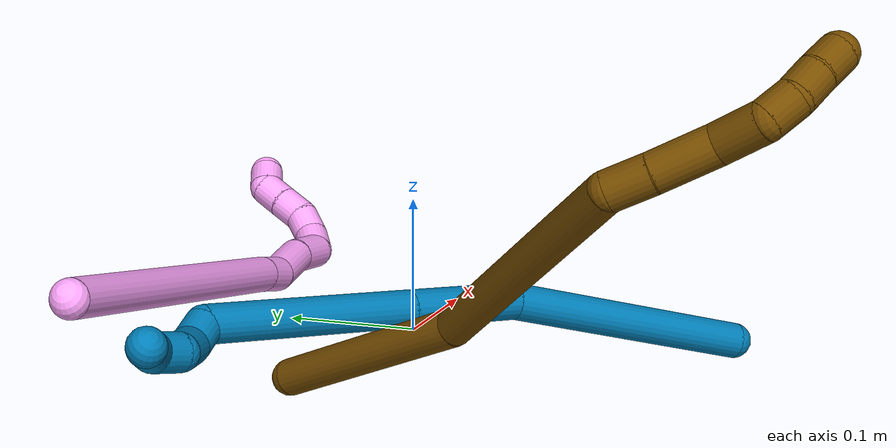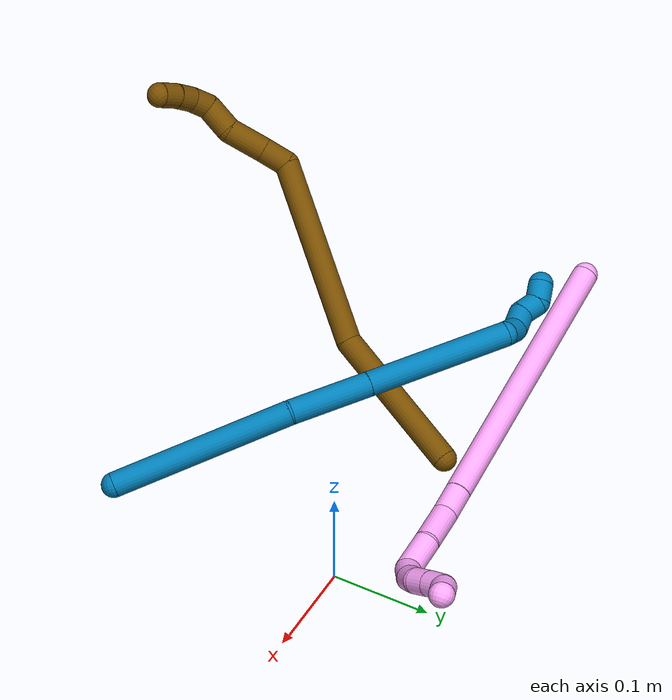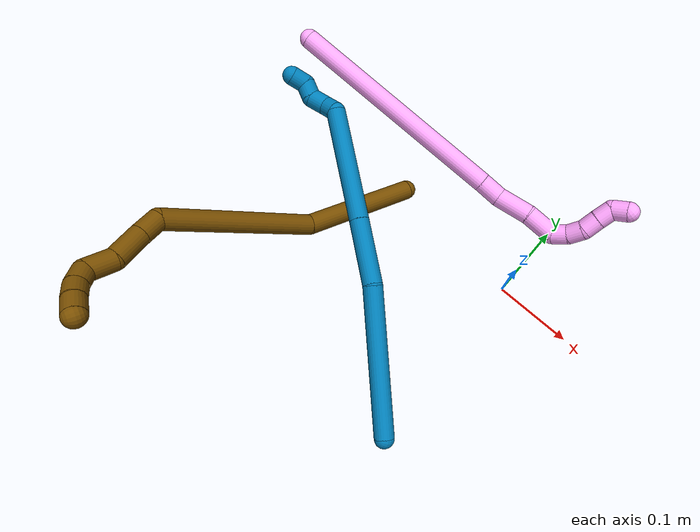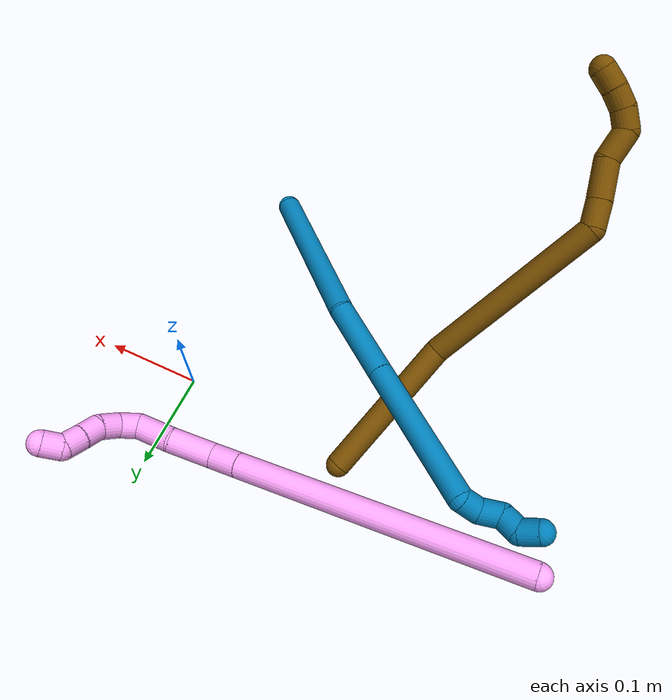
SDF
<sdf version="1.7">
 <world name="default">
  <model name="photoneo_s_sensor">
   <static>1</static>
   <pose>0 0 2 1.57079 1.57079 3.14159</pose>
   <link name="link">
    <inertial><mass>0.1</mass></inertial>
    <sensor name="sensor" type="depth">
     <update_rate>30</update_rate>
     <camera>
      <horizontal_fov>1.22</horizontal_fov>
      <image><width>1920</width><height>1200</height><format>B8G8R8</format></image>
      <clip><near>0.1</near><far>4</far></clip>
      <depth_camera><output>points</output></depth_camera>
     </camera>
     <plugin name="camera_plugin" filename="libgazebo_ros_depth_camera.so">
      <baseline>0.2</baseline>
      <alwaysOn>1</alwaysOn>
      <updateRate>0.0</updateRate>
      <cameraName>camera_ir</cameraName>
      <imageTopicName>/camera/color/image_raw</imageTopicName>
      <cameraInfoTopicName>/camera/color/camera_info</cameraInfoTopicName>
      <depthImageTopicName>/camera/depth/image_raw</depthImageTopicName>
      <depthImageCameraInfoTopicName>/camera/depth/camera_info</depthImageCameraInfoTopicName>
      <pointCloudTopicName>/camera/depth/points</pointCloudTopicName>
      <frameName>fr_optical</frameName>
      <pointCloudCutoff>0.1</pointCloudCutoff>
      <pointCloudCutoffMax>2.0</pointCloudCutoffMax>
      <distortionK1>0</distortionK1>
      <distortionK2>0</distortionK2>
      <distortionK3>0</distortionK3>
      <distortionT1>0</distortionT1>
      <distortionT2>0</distortionT2>
      <CxPrime>0</CxPrime>
      <Cx>0</Cx>
      <Cy>0</Cy>
      <focalLength>0</focalLength>
      <hackBaseline>0</hackBaseline>
     </plugin>
    </sensor>
   </link>
  </model>
  <model name="bin">
   <static>1</static>
   <link name="bottom">
    <collision name="collision-bottom">
     <pose>0 0 -0.01 0 -0 0</pose>
     <geometry><box><size>0.8 0.6 0.02</size></box></geometry>
     <surface>
      <friction><ode><mu>100</mu><mu2>100</mu2></ode></friction>
      <contact><collide_bitmask>65535</collide_bitmask></contact>
     </surface>
    </collision>
   </link>
   <link name="west_wall">
    <collision name="collision-west_wall">
     <pose>-0.41 0 0.1 0 -0 0</pose>
     <geometry><box><size>0.02 0.6 0.2</size></box></geometry>
     <surface>
      <friction><ode><mu>100</mu><mu2>100</mu2></ode></friction>
      <contact><collide_bitmask>65535</collide_bitmask></contact>
     </surface>
    </collision>
   </link>
   <link name="east_wall">
    <collision name="collision-east_wall">
     <pose>0.41 0 0.1 0 -0 0</pose>
     <geometry><box><size>0.02 0.6 0.2</size></box></geometry>
     <surface>
      <friction><ode><mu>100</mu><mu2>100</mu2></ode></friction>
      <contact><collide_bitmask>65535</collide_bitmask></contact>
     </surface>
    </collision>
   </link>
   <link name="south_wall">
    <collision name="collision-south_wall">
     <pose>0 -0.31 0.1 0 -0 0</pose>
     <geometry><box><size>0.8 0.02 0.2</size></box></geometry>
     <surface>
      <friction><ode><mu>100</mu><mu2>100</mu2></ode></friction>
      <contact><collide_bitmask>65535</collide_bitmask></contact>
     </surface>
    </collision>
   </link>
   <link name="north_wall">
    <collision name="collision-north_wall">
     <pose>0 0.31 0.1 0 -0 0</pose>
     <geometry><box><size>0.8 0.02 0.2</size></box></geometry>
     <surface>
      <friction><ode><mu>100</mu><mu2>100</mu2></ode></friction>
      <contact><collide_bitmask>65535</collide_bitmask></contact>
     </surface>
    </collision>
   </link>
  </model>
  <model name="4">
   <static>0</static>
   <link name="4">
    <collision name="collision-cylinder-e_1_1_4">
     <pose>0.062809 -0.024404 -0.127542 2.95253 0.450507 2.35695</pose>
     <geometry><cylinder><radius>0.0125</radius><length>0.288496</length></cylinder></geometry>
     <surface>
      <friction><ode><mu>1.16</mu><mu2>1.16</mu2><slip1>0</slip1><slip2>0</slip2></ode></friction>
      <contact><ode><kp>1e+06</kp><kd>1</kd><max_vel>0</max_vel><min_depth>0.001</min_depth></ode></contact>
     </surface>
    </collision>
    <visual name="visual-cylinder-e_1_1_4">
     <pose>0.062809 -0.024404 -0.127542 2.95253 0.450507 2.35695</pose>
     <geometry><cylinder><radius>0.0125</radius><length>0.288496</length></cylinder></geometry>
     <material><ambient>1 0.65098 0.996078 1</ambient></material>
    </visual>
    <collision name="collision-cylinder-e_2_4_5">
     <pose>0.131321 -0.051271 -0.268005 2.95329 0.409139 2.28734</pose>
     <geometry><cylinder><radius>0.0125</radius><length>0.028673</length></cylinder></geometry>
     <surface>
      <friction><ode><mu>1.16</mu><mu2>1.16</mu2><slip1>0</slip1><slip2>0</slip2></ode></friction>
      <contact><ode><kp>1e+06</kp><kd>1</kd><max_vel>0</max_vel><min_depth>0.001</min_depth></ode></contact>
     </surface>
    </collision>
    <visual name="visual-cylinder-e_2_4_5">
     <pose>0.131321 -0.051271 -0.268005 2.95329 0.409139 2.28734</pose>
     <geometry><cylinder><radius>0.0125</radius><length>0.028673</length></cylinder></geometry>
     <material><ambient>1 0.65098 0.996078 1</ambient></material>
    </visual>
    <collision name="collision-cylinder-e_3_5_6">
     <pose>0.151502 -0.057362 -0.297207 2.9223 0.714806 2.56826</pose>
     <geometry><cylinder><radius>0.0125</radius><length>0.044176</length></cylinder></geometry>
     <surface>
      <friction><ode><mu>1.16</mu><mu2>1.16</mu2><slip1>0</slip1><slip2>0</slip2></ode></friction>
      <contact><ode><kp>1e+06</kp><kd>1</kd><max_vel>0</max_vel><min_depth>0.001</min_depth></ode></contact>
     </surface>
    </collision>
    <visual name="visual-cylinder-e_3_5_6">
     <pose>0.151502 -0.057362 -0.297207 2.9223 0.714806 2.56826</pose>
     <geometry><cylinder><radius>0.0125</radius><length>0.044176</length></cylinder></geometry>
     <material><ambient>1 0.65098 0.996078 1</ambient></material>
    </visual>
    <collision name="collision-cylinder-e_4_6_7">
     <pose>0.174929 -0.06508 -0.329278 2.88814 0.501809 2.21896</pose>
     <geometry><cylinder><radius>0.0125</radius><length>0.037208</length></cylinder></geometry>
     <surface>
      <friction><ode><mu>1.16</mu><mu2>1.16</mu2><slip1>0</slip1><slip2>0</slip2></ode></friction>
      <contact><ode><kp>1e+06</kp><kd>1</kd><max_vel>0</max_vel><min_depth>0.001</min_depth></ode></contact>
     </surface>
    </collision>
    <visual name="visual-cylinder-e_4_6_7">
     <pose>0.174929 -0.06508 -0.329278 2.88814 0.501809 2.21896</pose>
     <geometry><cylinder><radius>0.0125</radius><length>0.037208</length></cylinder></geometry>
     <material><ambient>1 0.65098 0.996078 1</ambient></material>
    </visual>
    <collision name="collision-cylinder-e_5_7_8">
     <pose>0.19284 -0.067167 -0.349281 -2.69779 1.09083 -2.42966</pose>
     <geometry><cylinder><radius>0.0125</radius><length>0.020208</length></cylinder></geometry>
     <surface>
      <friction><ode><mu>1.16</mu><mu2>1.16</mu2><slip1>0</slip1><slip2>0</slip2></ode></friction>
      <contact><ode><kp>1e+06</kp><kd>1</kd><max_vel>0</max_vel><min_depth>0.001</min_depth></ode></contact>
     </surface>
    </collision>
    <visual name="visual-cylinder-e_5_7_8">
     <pose>0.19284 -0.067167 -0.349281 -2.69779 1.09083 -2.42966</pose>
     <geometry><cylinder><radius>0.0125</radius><length>0.020208</length></cylinder></geometry>
     <material><ambient>1 0.65098 0.996078 1</ambient></material>
    </visual>
    <collision name="collision-cylinder-e_6_8_9">
     <pose>0.211454 -0.061843 -0.354523 -1.87114 1.22511 -1.523</pose>
     <geometry><cylinder><radius>0.0125</radius><length>0.020517</length></cylinder></geometry>
     <surface>
      <friction><ode><mu>1.16</mu><mu2>1.16</mu2><slip1>0</slip1><slip2>0</slip2></ode></friction>
      <contact><ode><kp>1e+06</kp><kd>1</kd><max_vel>0</max_vel><min_depth>0.001</min_depth></ode></contact>
     </surface>
    </collision>
    <visual name="visual-cylinder-e_6_8_9">
     <pose>0.211454 -0.061843 -0.354523 -1.87114 1.22511 -1.523</pose>
     <geometry><cylinder><radius>0.0125</radius><length>0.020517</length></cylinder></geometry>
     <material><ambient>1 0.65098 0.996078 1</ambient></material>
    </visual>
    <collision name="collision-cylinder-e_7_9_10">
     <pose>0.228743 -0.051833 -0.355225 -1.52213 0.850918 -0.814901</pose>
     <geometry><cylinder><radius>0.0125</radius><length>0.020317</length></cylinder></geometry>
     <surface>
      <friction><ode><mu>1.16</mu><mu2>1.16</mu2><slip1>0</slip1><slip2>0</slip2></ode></friction>
      <contact><ode><kp>1e+06</kp><kd>1</kd><max_vel>0</max_vel><min_depth>0.001</min_depth></ode></contact>
     </surface>
    </collision>
    <visual name="visual-cylinder-e_7_9_10">
     <pose>0.228743 -0.051833 -0.355225 -1.52213 0.850918 -0.814901</pose>
     <geometry><cylinder><radius>0.0125</radius><length>0.020317</length></cylinder></geometry>
     <material><ambient>1 0.65098 0.996078 1</ambient></material>
    </visual>
    <collision name="collision-cylinder-e_8_10_11">
     <pose>0.244139 -0.038604 -0.355059 -1.59522 0.870228 -0.889046</pose>
     <geometry><cylinder><radius>0.0125</radius><length>0.020296</length></cylinder></geometry>
     <surface>
      <friction><ode><mu>1.16</mu><mu2>1.16</mu2><slip1>0</slip1><slip2>0</slip2></ode></friction>
      <contact><ode><kp>1e+06</kp><kd>1</kd><max_vel>0</max_vel><min_depth>0.001</min_depth></ode></contact>
     </surface>
    </collision>
    <visual name="visual-cylinder-e_8_10_11">
     <pose>0.244139 -0.038604 -0.355059 -1.59522 0.870228 -0.889046</pose>
     <geometry><cylinder><radius>0.0125</radius><length>0.020296</length></cylinder></geometry>
     <material><ambient>1 0.65098 0.996078 1</ambient></material>
    </visual>
    <collision name="collision-cylinder-e_9_11_2">
     <pose>0.261083 -0.031753 -0.359297 -3.06542 1.15193 -3.02437</pose>
     <geometry><cylinder><radius>0.0125</radius><length>0.020109</length></cylinder></geometry>
     <surface>
      <friction><ode><mu>1.16</mu><mu2>1.16</mu2><slip1>0</slip1><slip2>0</slip2></ode></friction>
      <contact><ode><kp>1e+06</kp><kd>1</kd><max_vel>0</max_vel><min_depth>0.001</min_depth></ode></contact>
     </surface>
    </collision>
    <visual name="visual-cylinder-e_9_11_2">
     <pose>0.261083 -0.031753 -0.359297 -3.06542 1.15193 -3.02437</pose>
     <geometry><cylinder><radius>0.0125</radius><length>0.020109</length></cylinder></geometry>
     <material><ambient>1 0.65098 0.996078 1</ambient></material>
    </visual>
    <collision name="collision-sphere-2">
     <pose>0.270268 -0.031441 -0.363374 0 -0 0</pose>
     <geometry><sphere><radius>0.0125</radius></sphere></geometry>
     <surface>
      <friction><ode><mu>1.16</mu><mu2>1.16</mu2><slip1>0</slip1><slip2>0</slip2></ode></friction>
      <contact><ode><kp>1e+06</kp><kd>1</kd><max_vel>0</max_vel><min_depth>0.001</min_depth></ode></contact>
     </surface>
    </collision>
    <visual name="visual-sphere-2">
     <pose>0.270268 -0.031441 -0.363374 0 -0 0</pose>
     <geometry><sphere><radius>0.0125</radius></sphere></geometry>
     <material><ambient>1 0.65098 0.996078 1</ambient></material>
    </visual>
    <collision name="collision-sphere-11">
     <pose>0.251897 -0.032064 -0.355219 0 -0 0</pose>
     <geometry><sphere><radius>0.0125</radius></sphere></geometry>
     <surface>
      <friction><ode><mu>1.16</mu><mu2>1.16</mu2><slip1>0</slip1><slip2>0</slip2></ode></friction>
      <contact><ode><kp>1e+06</kp><kd>1</kd><max_vel>0</max_vel><min_depth>0.001</min_depth></ode></contact>
     </surface>
    </collision>
    <visual name="visual-sphere-11">
     <pose>0.251897 -0.032064 -0.355219 0 -0 0</pose>
     <geometry><sphere><radius>0.0125</radius></sphere></geometry>
     <material><ambient>1 0.65098 0.996078 1</ambient></material>
    </visual>
    <collision name="collision-sphere-10">
     <pose>0.236381 -0.045144 -0.3549 0 -0 0</pose>
     <geometry><sphere><radius>0.0125</radius></sphere></geometry>
     <surface>
      <friction><ode><mu>1.16</mu><mu2>1.16</mu2><slip1>0</slip1><slip2>0</slip2></ode></friction>
      <contact><ode><kp>1e+06</kp><kd>1</kd><max_vel>0</max_vel><min_depth>0.001</min_depth></ode></contact>
     </surface>
    </collision>
    <visual name="visual-sphere-10">
     <pose>0.236381 -0.045144 -0.3549 0 -0 0</pose>
     <geometry><sphere><radius>0.0125</radius></sphere></geometry>
     <material><ambient>1 0.65098 0.996078 1</ambient></material>
    </visual>
    <collision name="collision-sphere-9">
     <pose>0.221105 -0.058523 -0.355551 0 -0 0</pose>
     <geometry><sphere><radius>0.0125</radius></sphere></geometry>
     <surface>
      <friction><ode><mu>1.16</mu><mu2>1.16</mu2><slip1>0</slip1><slip2>0</slip2></ode></friction>
      <contact><ode><kp>1e+06</kp><kd>1</kd><max_vel>0</max_vel><min_depth>0.001</min_depth></ode></contact>
     </surface>
    </collision>
    <visual name="visual-sphere-9">
     <pose>0.221105 -0.058523 -0.355551 0 -0 0</pose>
     <geometry><sphere><radius>0.0125</radius></sphere></geometry>
     <material><ambient>1 0.65098 0.996078 1</ambient></material>
    </visual>
    <collision name="collision-sphere-4">
     <pose>0.125617 -0.048809 -0.255084 0 -0 0</pose>
     <geometry><sphere><radius>0.0125</radius></sphere></geometry>
     <surface>
      <friction><ode><mu>1.16</mu><mu2>1.16</mu2><slip1>0</slip1><slip2>0</slip2></ode></friction>
      <contact><ode><kp>1e+06</kp><kd>1</kd><max_vel>0</max_vel><min_depth>0.001</min_depth></ode></contact>
     </surface>
    </collision>
    <visual name="visual-sphere-4">
     <pose>0.125617 -0.048809 -0.255084 0 -0 0</pose>
     <geometry><sphere><radius>0.0125</radius></sphere></geometry>
     <material><ambient>1 0.65098 0.996078 1</ambient></material>
    </visual>
    <collision name="collision-sphere-1">
     <geometry><sphere><radius>0.0125</radius></sphere></geometry>
     <surface>
      <friction><ode><mu>1.16</mu><mu2>1.16</mu2><slip1>0</slip1><slip2>0</slip2></ode></friction>
      <contact><ode><kp>1e+06</kp><kd>1</kd><max_vel>0</max_vel><min_depth>0.001</min_depth></ode></contact>
     </surface>
    </collision>
    <visual name="visual-sphere-1">
     <geometry><sphere><radius>0.0125</radius></sphere></geometry>
     <material><ambient>1 0.65098 0.996078 1</ambient></material>
    </visual>
    <collision name="collision-sphere-8">
     <pose>0.201802 -0.065164 -0.353494 0 -0 0</pose>
     <geometry><sphere><radius>0.0125</radius></sphere></geometry>
     <surface>
      <friction><ode><mu>1.16</mu><mu2>1.16</mu2><slip1>0</slip1><slip2>0</slip2></ode></friction>
      <contact><ode><kp>1e+06</kp><kd>1</kd><max_vel>0</max_vel><min_depth>0.001</min_depth></ode></contact>
     </surface>
    </collision>
    <visual name="visual-sphere-8">
     <pose>0.201802 -0.065164 -0.353494 0 -0 0</pose>
     <geometry><sphere><radius>0.0125</radius></sphere></geometry>
     <material><ambient>1 0.65098 0.996078 1</ambient></material>
    </visual>
    <collision name="collision-sphere-5">
     <pose>0.137024 -0.053733 -0.280925 0 -0 0</pose>
     <geometry><sphere><radius>0.0125</radius></sphere></geometry>
     <surface>
      <friction><ode><mu>1.16</mu><mu2>1.16</mu2><slip1>0</slip1><slip2>0</slip2></ode></friction>
      <contact><ode><kp>1e+06</kp><kd>1</kd><max_vel>0</max_vel><min_depth>0.001</min_depth></ode></contact>
     </surface>
    </collision>
    <visual name="visual-sphere-5">
     <pose>0.137024 -0.053733 -0.280925 0 -0 0</pose>
     <geometry><sphere><radius>0.0125</radius></sphere></geometry>
     <material><ambient>1 0.65098 0.996078 1</ambient></material>
    </visual>
    <collision name="collision-sphere-6">
     <pose>0.16598 -0.060991 -0.313489 0 -0 0</pose>
     <geometry><sphere><radius>0.0125</radius></sphere></geometry>
     <surface>
      <friction><ode><mu>1.16</mu><mu2>1.16</mu2><slip1>0</slip1><slip2>0</slip2></ode></friction>
      <contact><ode><kp>1e+06</kp><kd>1</kd><max_vel>0</max_vel><min_depth>0.001</min_depth></ode></contact>
     </surface>
    </collision>
    <visual name="visual-sphere-6">
     <pose>0.16598 -0.060991 -0.313489 0 -0 0</pose>
     <geometry><sphere><radius>0.0125</radius></sphere></geometry>
     <material><ambient>1 0.65098 0.996078 1</ambient></material>
    </visual>
    <collision name="collision-sphere-7">
     <pose>0.183878 -0.06917 -0.345068 0 -0 0</pose>
     <geometry><sphere><radius>0.0125</radius></sphere></geometry>
     <surface>
      <friction><ode><mu>1.16</mu><mu2>1.16</mu2><slip1>0</slip1><slip2>0</slip2></ode></friction>
      <contact><ode><kp>1e+06</kp><kd>1</kd><max_vel>0</max_vel><min_depth>0.001</min_depth></ode></contact>
     </surface>
    </collision>
    <visual name="visual-sphere-7">
     <pose>0.183878 -0.06917 -0.345068 0 -0 0</pose>
     <geometry><sphere><radius>0.0125</radius></sphere></geometry>
     <material><ambient>1 0.65098 0.996078 1</ambient></material>
    </visual>
    <inertial>
     <pose>0.11635 -0.037135 -0.211683 0 -0 0</pose>
     <mass>0.5</mass>
     <inertia><ixx>1.6e-05</ixx><ixy>0</ixy><ixz>0</ixz><iyy>0.00282</iyy><iyz>0</iyz><izz>-0.00058</izz></inertia>
    </inertial>
   </link>
   <pose>-0.387974 0.066382 0.110994 -0.328302 -0.865745 0.504871</pose>
  </model>
  <model name="9">
   <static>0</static>
   <link name="9">
    <collision name="collision-cylinder-e_1_1_4">
     <pose>-0.041654 0.081236 -0.013548 -1.73605 -0.468249 0.548923</pose>
     <geometry><cylinder><radius>0.0125</radius><length>0.184583</length></cylinder></geometry>
     <surface>
      <friction><ode><mu>1.16</mu><mu2>1.16</mu2><slip1>0</slip1><slip2>0</slip2></ode></friction>
      <contact><ode><kp>1e+06</kp><kd>1</kd><max_vel>0</max_vel><min_depth>0.001</min_depth></ode></contact>
     </surface>
    </collision>
    <visual name="visual-cylinder-e_1_1_4">
     <pose>-0.041654 0.081236 -0.013548 -1.73605 -0.468249 0.548923</pose>
     <geometry><cylinder><radius>0.0125</radius><length>0.184583</length></cylinder></geometry>
     <material><ambient>0 0.490196 0.709804 1</ambient></material>
    </visual>
    <collision name="collision-cylinder-e_2_4_5">
     <pose>-0.093407 0.202629 -0.031645 -1.6836 -0.244881 0.273843</pose>
     <geometry><cylinder><radius>0.0125</radius><length>0.083316</length></cylinder></geometry>
     <surface>
      <friction><ode><mu>1.16</mu><mu2>1.16</mu2><slip1>0</slip1><slip2>0</slip2></ode></friction>
      <contact><ode><kp>1e+06</kp><kd>1</kd><max_vel>0</max_vel><min_depth>0.001</min_depth></ode></contact>
     </surface>
    </collision>
    <visual name="visual-cylinder-e_2_4_5">
     <pose>-0.093407 0.202629 -0.031645 -1.6836 -0.244881 0.273843</pose>
     <geometry><cylinder><radius>0.0125</radius><length>0.083316</length></cylinder></geometry>
     <material><ambient>0 0.490196 0.709804 1</ambient></material>
    </visual>
    <collision name="collision-cylinder-e_3_5_6">
     <pose>-0.12121 0.314505 -0.044622 -1.68777 -0.240432 0.269997</pose>
     <geometry><cylinder><radius>0.0125</radius><length>0.148699</length></cylinder></geometry>
     <surface>
      <friction><ode><mu>1.16</mu><mu2>1.16</mu2><slip1>0</slip1><slip2>0</slip2></ode></friction>
      <contact><ode><kp>1e+06</kp><kd>1</kd><max_vel>0</max_vel><min_depth>0.001</min_depth></ode></contact>
     </surface>
    </collision>
    <visual name="visual-cylinder-e_3_5_6">
     <pose>-0.12121 0.314505 -0.044622 -1.68777 -0.240432 0.269997</pose>
     <geometry><cylinder><radius>0.0125</radius><length>0.148699</length></cylinder></geometry>
     <material><ambient>0 0.490196 0.709804 1</ambient></material>
    </visual>
    <collision name="collision-cylinder-e_4_6_7">
     <pose>-0.133728 0.394813 -0.054453 -1.73278 0.537349 -0.626611</pose>
     <geometry><cylinder><radius>0.0125</radius><length>0.020265</length></cylinder></geometry>
     <surface>
      <friction><ode><mu>1.16</mu><mu2>1.16</mu2><slip1>0</slip1><slip2>0</slip2></ode></friction>
      <contact><ode><kp>1e+06</kp><kd>1</kd><max_vel>0</max_vel><min_depth>0.001</min_depth></ode></contact>
     </surface>
    </collision>
    <visual name="visual-cylinder-e_4_6_7">
     <pose>-0.133728 0.394813 -0.054453 -1.73278 0.537349 -0.626611</pose>
     <geometry><cylinder><radius>0.0125</radius><length>0.020265</length></cylinder></geometry>
     <material><ambient>0 0.490196 0.709804 1</ambient></material>
    </visual>
    <collision name="collision-cylinder-e_5_7_8">
     <pose>-0.124946 0.411278 -0.06306 -2.31169 0.324973 -0.712497</pose>
     <geometry><cylinder><radius>0.0125</radius><length>0.022524</length></cylinder></geometry>
     <surface>
      <friction><ode><mu>1.16</mu><mu2>1.16</mu2><slip1>0</slip1><slip2>0</slip2></ode></friction>
      <contact><ode><kp>1e+06</kp><kd>1</kd><max_vel>0</max_vel><min_depth>0.001</min_depth></ode></contact>
     </surface>
    </collision>
    <visual name="visual-cylinder-e_5_7_8">
     <pose>-0.124946 0.411278 -0.06306 -2.31169 0.324973 -0.712497</pose>
     <geometry><cylinder><radius>0.0125</radius><length>0.022524</length></cylinder></geometry>
     <material><ambient>0 0.490196 0.709804 1</ambient></material>
    </visual>
    <collision name="collision-cylinder-e_6_8_9">
     <pose>-0.123081 0.428603 -0.073533 -1.90384 -0.171405 0.240095</pose>
     <geometry><cylinder><radius>0.0125</radius><length>0.020296</length></cylinder></geometry>
     <surface>
      <friction><ode><mu>1.16</mu><mu2>1.16</mu2><slip1>0</slip1><slip2>0</slip2></ode></friction>
      <contact><ode><kp>1e+06</kp><kd>1</kd><max_vel>0</max_vel><min_depth>0.001</min_depth></ode></contact>
     </surface>
    </collision>
    <visual name="visual-cylinder-e_6_8_9">
     <pose>-0.123081 0.428603 -0.073533 -1.90384 -0.171405 0.240095</pose>
     <geometry><cylinder><radius>0.0125</radius><length>0.020296</length></cylinder></geometry>
     <material><ambient>0 0.490196 0.709804 1</ambient></material>
    </visual>
    <collision name="collision-cylinder-e_7_9_2">
     <pose>-0.123637 0.44321 -0.085475 -2.6052 0.115941 -0.416245</pose>
     <geometry><cylinder><radius>0.0125</radius><length>0.020316</length></cylinder></geometry>
     <surface>
      <friction><ode><mu>1.16</mu><mu2>1.16</mu2><slip1>0</slip1><slip2>0</slip2></ode></friction>
      <contact><ode><kp>1e+06</kp><kd>1</kd><max_vel>0</max_vel><min_depth>0.001</min_depth></ode></contact>
     </surface>
    </collision>
    <visual name="visual-cylinder-e_7_9_2">
     <pose>-0.123637 0.44321 -0.085475 -2.6052 0.115941 -0.416245</pose>
     <geometry><cylinder><radius>0.0125</radius><length>0.020316</length></cylinder></geometry>
     <material><ambient>0 0.490196 0.709804 1</ambient></material>
    </visual>
    <collision name="collision-sphere-2">
     <pose>-0.122462 0.448366 -0.094148 0 -0 0</pose>
     <geometry><sphere><radius>0.0125</radius></sphere></geometry>
     <surface>
      <friction><ode><mu>1.16</mu><mu2>1.16</mu2><slip1>0</slip1><slip2>0</slip2></ode></friction>
      <contact><ode><kp>1e+06</kp><kd>1</kd><max_vel>0</max_vel><min_depth>0.001</min_depth></ode></contact>
     </surface>
    </collision>
    <visual name="visual-sphere-2">
     <pose>-0.122462 0.448366 -0.094148 0 -0 0</pose>
     <geometry><sphere><radius>0.0125</radius></sphere></geometry>
     <material><ambient>0 0.490196 0.709804 1</ambient></material>
    </visual>
    <collision name="collision-sphere-9">
     <pose>-0.124812 0.438053 -0.076802 0 -0 0</pose>
     <geometry><sphere><radius>0.0125</radius></sphere></geometry>
     <surface>
      <friction><ode><mu>1.16</mu><mu2>1.16</mu2><slip1>0</slip1><slip2>0</slip2></ode></friction>
      <contact><ode><kp>1e+06</kp><kd>1</kd><max_vel>0</max_vel><min_depth>0.001</min_depth></ode></contact>
     </surface>
    </collision>
    <visual name="visual-sphere-9">
     <pose>-0.124812 0.438053 -0.076802 0 -0 0</pose>
     <geometry><sphere><radius>0.0125</radius></sphere></geometry>
     <material><ambient>0 0.490196 0.709804 1</ambient></material>
    </visual>
    <collision name="collision-sphere-4">
     <pose>-0.083307 0.162471 -0.027096 0 -0 0</pose>
     <geometry><sphere><radius>0.0125</radius></sphere></geometry>
     <surface>
      <friction><ode><mu>1.16</mu><mu2>1.16</mu2><slip1>0</slip1><slip2>0</slip2></ode></friction>
      <contact><ode><kp>1e+06</kp><kd>1</kd><max_vel>0</max_vel><min_depth>0.001</min_depth></ode></contact>
     </surface>
    </collision>
    <visual name="visual-sphere-4">
     <pose>-0.083307 0.162471 -0.027096 0 -0 0</pose>
     <geometry><sphere><radius>0.0125</radius></sphere></geometry>
     <material><ambient>0 0.490196 0.709804 1</ambient></material>
    </visual>
    <collision name="collision-sphere-1">
     <geometry><sphere><radius>0.0125</radius></sphere></geometry>
     <surface>
      <friction><ode><mu>1.16</mu><mu2>1.16</mu2><slip1>0</slip1><slip2>0</slip2></ode></friction>
      <contact><ode><kp>1e+06</kp><kd>1</kd><max_vel>0</max_vel><min_depth>0.001</min_depth></ode></contact>
     </surface>
    </collision>
    <visual name="visual-sphere-1">
     <geometry><sphere><radius>0.0125</radius></sphere></geometry>
     <material><ambient>0 0.490196 0.709804 1</ambient></material>
    </visual>
    <collision name="collision-sphere-8">
     <pose>-0.12135 0.419153 -0.070264 0 -0 0</pose>
     <geometry><sphere><radius>0.0125</radius></sphere></geometry>
     <surface>
      <friction><ode><mu>1.16</mu><mu2>1.16</mu2><slip1>0</slip1><slip2>0</slip2></ode></friction>
      <contact><ode><kp>1e+06</kp><kd>1</kd><max_vel>0</max_vel><min_depth>0.001</min_depth></ode></contact>
     </surface>
    </collision>
    <visual name="visual-sphere-8">
     <pose>-0.12135 0.419153 -0.070264 0 -0 0</pose>
     <geometry><sphere><radius>0.0125</radius></sphere></geometry>
     <material><ambient>0 0.490196 0.709804 1</ambient></material>
    </visual>
    <collision name="collision-sphere-5">
     <pose>-0.103506 0.242787 -0.036194 0 -0 0</pose>
     <geometry><sphere><radius>0.0125</radius></sphere></geometry>
     <surface>
      <friction><ode><mu>1.16</mu><mu2>1.16</mu2><slip1>0</slip1><slip2>0</slip2></ode></friction>
      <contact><ode><kp>1e+06</kp><kd>1</kd><max_vel>0</max_vel><min_depth>0.001</min_depth></ode></contact>
     </surface>
    </collision>
    <visual name="visual-sphere-5">
     <pose>-0.103506 0.242787 -0.036194 0 -0 0</pose>
     <geometry><sphere><radius>0.0125</radius></sphere></geometry>
     <material><ambient>0 0.490196 0.709804 1</ambient></material>
    </visual>
    <collision name="collision-sphere-6">
     <pose>-0.138915 0.386222 -0.053049 0 -0 0</pose>
     <geometry><sphere><radius>0.0125</radius></sphere></geometry>
     <surface>
      <friction><ode><mu>1.16</mu><mu2>1.16</mu2><slip1>0</slip1><slip2>0</slip2></ode></friction>
      <contact><ode><kp>1e+06</kp><kd>1</kd><max_vel>0</max_vel><min_depth>0.001</min_depth></ode></contact>
     </surface>
    </collision>
    <visual name="visual-sphere-6">
     <pose>-0.138915 0.386222 -0.053049 0 -0 0</pose>
     <geometry><sphere><radius>0.0125</radius></sphere></geometry>
     <material><ambient>0 0.490196 0.709804 1</ambient></material>
    </visual>
    <collision name="collision-sphere-7">
     <pose>-0.128542 0.403403 -0.055857 0 -0 0</pose>
     <geometry><sphere><radius>0.0125</radius></sphere></geometry>
     <surface>
      <friction><ode><mu>1.16</mu><mu2>1.16</mu2><slip1>0</slip1><slip2>0</slip2></ode></friction>
      <contact><ode><kp>1e+06</kp><kd>1</kd><max_vel>0</max_vel><min_depth>0.001</min_depth></ode></contact>
     </surface>
    </collision>
    <visual name="visual-sphere-7">
     <pose>-0.128542 0.403403 -0.055857 0 -0 0</pose>
     <geometry><sphere><radius>0.0125</radius></sphere></geometry>
     <material><ambient>0 0.490196 0.709804 1</ambient></material>
    </visual>
    <inertial>
     <pose>-0.088058 0.227223 -0.035051 0 -0 0</pose>
     <mass>0.5</mass>
     <inertia>
      <ixx>0.001041</ixx>
      <ixy>0</ixy>
      <ixz>0</ixz>
      <iyy>0.000397</iyy>
      <iyz>0</iyz>
      <izz>-0.000482</izz>
     </inertia>
    </inertial>
   </link>
   <pose>0.006172 -0.241692 0.012541 -2.89003 0.783921 -1.95005</pose>
  </model>
  <model name="12">
   <static>0</static>
   <link name="12">
    <collision name="collision-cylinder-e_1_1_4">
     <pose>0.000321 -0.003377 0.075954 0.044437 0.004218 9.4e-05</pose>
     <geometry><cylinder><radius>0.0125</radius><length>0.152059</length></cylinder></geometry>
     <surface>
      <friction><ode><mu>1.16</mu><mu2>1.16</mu2><slip1>0</slip1><slip2>0</slip2></ode></friction>
      <contact><ode><kp>1e+06</kp><kd>1</kd><max_vel>0</max_vel><min_depth>0.001</min_depth></ode></contact>
     </surface>
    </collision>
    <visual name="visual-cylinder-e_1_1_4">
     <pose>0.000321 -0.003377 0.075954 0.044437 0.004218 9.4e-05</pose>
     <geometry><cylinder><radius>0.0125</radius><length>0.152059</length></cylinder></geometry>
     <material><ambient>0.466667 0.301961 0 1</ambient></material>
    </visual>
    <collision name="collision-cylinder-e_2_4_5">
     <pose>0.032549 -0.000821 0.240409 -0.066948 0.345309 -0.011679</pose>
     <geometry><cylinder><radius>0.0125</radius><length>0.188529</length></cylinder></geometry>
     <surface>
      <friction><ode><mu>1.16</mu><mu2>1.16</mu2><slip1>0</slip1><slip2>0</slip2></ode></friction>
      <contact><ode><kp>1e+06</kp><kd>1</kd><max_vel>0</max_vel><min_depth>0.001</min_depth></ode></contact>
     </surface>
    </collision>
    <visual name="visual-cylinder-e_2_4_5">
     <pose>0.032549 -0.000821 0.240409 -0.066948 0.345309 -0.011679</pose>
     <geometry><cylinder><radius>0.0125</radius><length>0.188529</length></cylinder></geometry>
     <material><ambient>0.466667 0.301961 0 1</ambient></material>
    </visual>
    <collision name="collision-cylinder-e_3_5_6">
     <pose>0.062647 -0.001133 0.340849 0.482024 -0.133498 -0.032858</pose>
     <geometry><cylinder><radius>0.0125</radius><length>0.027189</length></cylinder></geometry>
     <surface>
      <friction><ode><mu>1.16</mu><mu2>1.16</mu2><slip1>0</slip1><slip2>0</slip2></ode></friction>
      <contact><ode><kp>1e+06</kp><kd>1</kd><max_vel>0</max_vel><min_depth>0.001</min_depth></ode></contact>
     </surface>
    </collision>
    <visual name="visual-cylinder-e_3_5_6">
     <pose>0.062647 -0.001133 0.340849 0.482024 -0.133498 -0.032858</pose>
     <geometry><cylinder><radius>0.0125</radius><length>0.027189</length></cylinder></geometry>
     <material><ambient>0.466667 0.301961 0 1</ambient></material>
    </visual>
    <collision name="collision-cylinder-e_4_6_7">
     <pose>0.05842 -0.017533 0.369324 0.550669 -0.123946 -0.035057</pose>
     <geometry><cylinder><radius>0.0125</radius><length>0.039111</length></cylinder></geometry>
     <surface>
      <friction><ode><mu>1.16</mu><mu2>1.16</mu2><slip1>0</slip1><slip2>0</slip2></ode></friction>
      <contact><ode><kp>1e+06</kp><kd>1</kd><max_vel>0</max_vel><min_depth>0.001</min_depth></ode></contact>
     </surface>
    </collision>
    <visual name="visual-cylinder-e_4_6_7">
     <pose>0.05842 -0.017533 0.369324 0.550669 -0.123946 -0.035057</pose>
     <geometry><cylinder><radius>0.0125</radius><length>0.039111</length></cylinder></geometry>
     <material><ambient>0.466667 0.301961 0 1</ambient></material>
    </visual>
    <collision name="collision-cylinder-e_5_7_8">
     <pose>0.056963 -0.030541 0.401205 0.183891 0.061513 0.005674</pose>
     <geometry><cylinder><radius>0.0125</radius><length>0.031274</length></cylinder></geometry>
     <surface>
      <friction><ode><mu>1.16</mu><mu2>1.16</mu2><slip1>0</slip1><slip2>0</slip2></ode></friction>
      <contact><ode><kp>1e+06</kp><kd>1</kd><max_vel>0</max_vel><min_depth>0.001</min_depth></ode></contact>
     </surface>
    </collision>
    <visual name="visual-cylinder-e_5_7_8">
     <pose>0.056963 -0.030541 0.401205 0.183891 0.061513 0.005674</pose>
     <geometry><cylinder><radius>0.0125</radius><length>0.031274</length></cylinder></geometry>
     <material><ambient>0.466667 0.301961 0 1</ambient></material>
    </visual>
    <collision name="collision-cylinder-e_6_8_9">
     <pose>0.057903 -0.041845 0.422626 0.947355 -0.002034 -0.001042</pose>
     <geometry><cylinder><radius>0.0125</radius><length>0.020817</length></cylinder></geometry>
     <surface>
      <friction><ode><mu>1.16</mu><mu2>1.16</mu2><slip1>0</slip1><slip2>0</slip2></ode></friction>
      <contact><ode><kp>1e+06</kp><kd>1</kd><max_vel>0</max_vel><min_depth>0.001</min_depth></ode></contact>
     </surface>
    </collision>
    <visual name="visual-cylinder-e_6_8_9">
     <pose>0.057903 -0.041845 0.422626 0.947355 -0.002034 -0.001042</pose>
     <geometry><cylinder><radius>0.0125</radius><length>0.020817</length></cylinder></geometry>
     <material><ambient>0.466667 0.301961 0 1</ambient></material>
    </visual>
    <collision name="collision-cylinder-e_7_9_10">
     <pose>0.058121 -0.059753 0.431983 1.23698 0.023821 0.016952</pose>
     <geometry><cylinder><radius>0.0125</radius><length>0.020027</length></cylinder></geometry>
     <surface>
      <friction><ode><mu>1.16</mu><mu2>1.16</mu2><slip1>0</slip1><slip2>0</slip2></ode></friction>
      <contact><ode><kp>1e+06</kp><kd>1</kd><max_vel>0</max_vel><min_depth>0.001</min_depth></ode></contact>
     </surface>
    </collision>
    <visual name="visual-cylinder-e_7_9_10">
     <pose>0.058121 -0.059753 0.431983 1.23698 0.023821 0.016952</pose>
     <geometry><cylinder><radius>0.0125</radius><length>0.020027</length></cylinder></geometry>
     <material><ambient>0.466667 0.301961 0 1</ambient></material>
    </visual>
    <collision name="collision-cylinder-e_8_10_2">
     <pose>0.057623 -0.079378 0.437769 1.3291 -0.070168 -0.05498</pose>
     <geometry><cylinder><radius>0.0125</radius><length>0.020994</length></cylinder></geometry>
     <surface>
      <friction><ode><mu>1.16</mu><mu2>1.16</mu2><slip1>0</slip1><slip2>0</slip2></ode></friction>
      <contact><ode><kp>1e+06</kp><kd>1</kd><max_vel>0</max_vel><min_depth>0.001</min_depth></ode></contact>
     </surface>
    </collision>
    <visual name="visual-cylinder-e_8_10_2">
     <pose>0.057623 -0.079378 0.437769 1.3291 -0.070168 -0.05498</pose>
     <geometry><cylinder><radius>0.0125</radius><length>0.020994</length></cylinder></geometry>
     <material><ambient>0.466667 0.301961 0 1</ambient></material>
    </visual>
    <collision name="collision-sphere-2">
     <pose>0.056887 -0.089545 0.440275 0 -0 0</pose>
     <geometry><sphere><radius>0.0125</radius></sphere></geometry>
     <surface>
      <friction><ode><mu>1.16</mu><mu2>1.16</mu2><slip1>0</slip1><slip2>0</slip2></ode></friction>
      <contact><ode><kp>1e+06</kp><kd>1</kd><max_vel>0</max_vel><min_depth>0.001</min_depth></ode></contact>
     </surface>
    </collision>
    <visual name="visual-sphere-2">
     <pose>0.056887 -0.089545 0.440275 0 -0 0</pose>
     <geometry><sphere><radius>0.0125</radius></sphere></geometry>
     <material><ambient>0.466667 0.301961 0 1</ambient></material>
    </visual>
    <collision name="collision-sphere-10">
     <pose>0.058359 -0.069211 0.435263 0 -0 0</pose>
     <geometry><sphere><radius>0.0125</radius></sphere></geometry>
     <surface>
      <friction><ode><mu>1.16</mu><mu2>1.16</mu2><slip1>0</slip1><slip2>0</slip2></ode></friction>
      <contact><ode><kp>1e+06</kp><kd>1</kd><max_vel>0</max_vel><min_depth>0.001</min_depth></ode></contact>
     </surface>
    </collision>
    <visual name="visual-sphere-10">
     <pose>0.058359 -0.069211 0.435263 0 -0 0</pose>
     <geometry><sphere><radius>0.0125</radius></sphere></geometry>
     <material><ambient>0.466667 0.301961 0 1</ambient></material>
    </visual>
    <collision name="collision-sphere-9">
     <pose>0.057882 -0.050296 0.428703 0 -0 0</pose>
     <geometry><sphere><radius>0.0125</radius></sphere></geometry>
     <surface>
      <friction><ode><mu>1.16</mu><mu2>1.16</mu2><slip1>0</slip1><slip2>0</slip2></ode></friction>
      <contact><ode><kp>1e+06</kp><kd>1</kd><max_vel>0</max_vel><min_depth>0.001</min_depth></ode></contact>
     </surface>
    </collision>
    <visual name="visual-sphere-9">
     <pose>0.057882 -0.050296 0.428703 0 -0 0</pose>
     <geometry><sphere><radius>0.0125</radius></sphere></geometry>
     <material><ambient>0.466667 0.301961 0 1</ambient></material>
    </visual>
    <collision name="collision-sphere-4">
     <pose>0.000641 -0.006755 0.151907 0 -0 0</pose>
     <geometry><sphere><radius>0.0125</radius></sphere></geometry>
     <surface>
      <friction><ode><mu>1.16</mu><mu2>1.16</mu2><slip1>0</slip1><slip2>0</slip2></ode></friction>
      <contact><ode><kp>1e+06</kp><kd>1</kd><max_vel>0</max_vel><min_depth>0.001</min_depth></ode></contact>
     </surface>
    </collision>
    <visual name="visual-sphere-4">
     <pose>0.000641 -0.006755 0.151907 0 -0 0</pose>
     <geometry><sphere><radius>0.0125</radius></sphere></geometry>
     <material><ambient>0.466667 0.301961 0 1</ambient></material>
    </visual>
    <collision name="collision-sphere-1">
     <geometry><sphere><radius>0.0125</radius></sphere></geometry>
     <surface>
      <friction><ode><mu>1.16</mu><mu2>1.16</mu2><slip1>0</slip1><slip2>0</slip2></ode></friction>
      <contact><ode><kp>1e+06</kp><kd>1</kd><max_vel>0</max_vel><min_depth>0.001</min_depth></ode></contact>
     </surface>
    </collision>
    <visual name="visual-sphere-1">
     <geometry><sphere><radius>0.0125</radius></sphere></geometry>
     <material><ambient>0.466667 0.301961 0 1</ambient></material>
    </visual>
    <collision name="collision-sphere-8">
     <pose>0.057925 -0.033395 0.416549 0 -0 0</pose>
     <geometry><sphere><radius>0.0125</radius></sphere></geometry>
     <surface>
      <friction><ode><mu>1.16</mu><mu2>1.16</mu2><slip1>0</slip1><slip2>0</slip2></ode></friction>
      <contact><ode><kp>1e+06</kp><kd>1</kd><max_vel>0</max_vel><min_depth>0.001</min_depth></ode></contact>
     </surface>
    </collision>
    <visual name="visual-sphere-8">
     <pose>0.057925 -0.033395 0.416549 0 -0 0</pose>
     <geometry><sphere><radius>0.0125</radius></sphere></geometry>
     <material><ambient>0.466667 0.301961 0 1</ambient></material>
    </visual>
    <collision name="collision-sphere-5">
     <pose>0.064456 0.005113 0.32891 0 -0 0</pose>
     <geometry><sphere><radius>0.0125</radius></sphere></geometry>
     <surface>
      <friction><ode><mu>1.16</mu><mu2>1.16</mu2><slip1>0</slip1><slip2>0</slip2></ode></friction>
      <contact><ode><kp>1e+06</kp><kd>1</kd><max_vel>0</max_vel><min_depth>0.001</min_depth></ode></contact>
     </surface>
    </collision>
    <visual name="visual-sphere-5">
     <pose>0.064456 0.005113 0.32891 0 -0 0</pose>
     <geometry><sphere><radius>0.0125</radius></sphere></geometry>
     <material><ambient>0.466667 0.301961 0 1</ambient></material>
    </visual>
    <collision name="collision-sphere-6">
     <pose>0.060837 -0.007379 0.352787 0 -0 0</pose>
     <geometry><sphere><radius>0.0125</radius></sphere></geometry>
     <surface>
      <friction><ode><mu>1.16</mu><mu2>1.16</mu2><slip1>0</slip1><slip2>0</slip2></ode></friction>
      <contact><ode><kp>1e+06</kp><kd>1</kd><max_vel>0</max_vel><min_depth>0.001</min_depth></ode></contact>
     </surface>
    </collision>
    <visual name="visual-sphere-6">
     <pose>0.060837 -0.007379 0.352787 0 -0 0</pose>
     <geometry><sphere><radius>0.0125</radius></sphere></geometry>
     <material><ambient>0.466667 0.301961 0 1</ambient></material>
    </visual>
    <collision name="collision-sphere-7">
     <pose>0.056002 -0.027687 0.385861 0 -0 0</pose>
     <geometry><sphere><radius>0.0125</radius></sphere></geometry>
     <surface>
      <friction><ode><mu>1.16</mu><mu2>1.16</mu2><slip1>0</slip1><slip2>0</slip2></ode></friction>
      <contact><ode><kp>1e+06</kp><kd>1</kd><max_vel>0</max_vel><min_depth>0.001</min_depth></ode></contact>
     </surface>
    </collision>
    <visual name="visual-sphere-7">
     <pose>0.056002 -0.027687 0.385861 0 -0 0</pose>
     <geometry><sphere><radius>0.0125</radius></sphere></geometry>
     <material><ambient>0.466667 0.301961 0 1</ambient></material>
    </visual>
    <inertial>
     <pose>0.031068 -0.012148 0.239545 0 -0 0</pose>
     <mass>0.5</mass>
     <inertia>
      <ixx>0.000847</ixx>
      <ixy>0</ixy>
      <ixz>0</ixz>
      <iyy>0.000863</iyy>
      <iyz>0</iyz>
      <izz>-0.00017</izz>
     </inertia>
    </inertial>
   </link>
   <pose>-0.182171 0.020489 0.011496 -0.883208 -0.96386 2.16798</pose>
  </model>
 </world>
</sdf>
